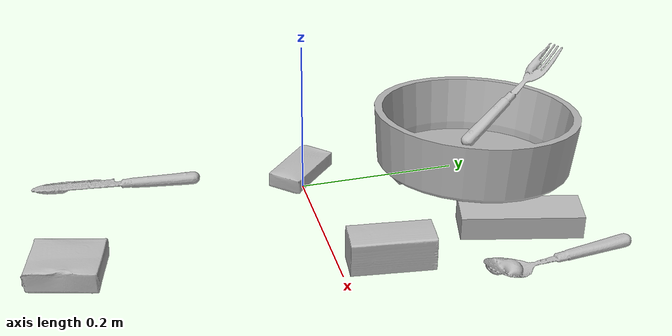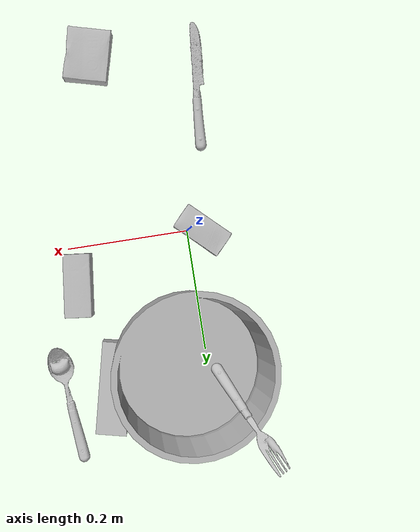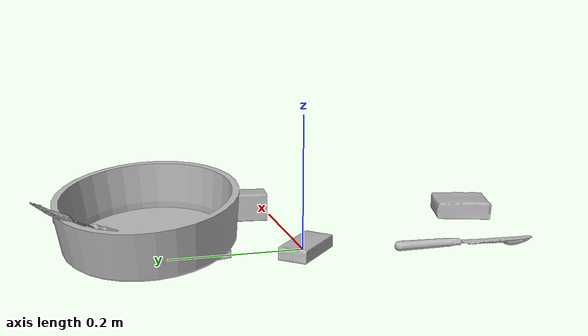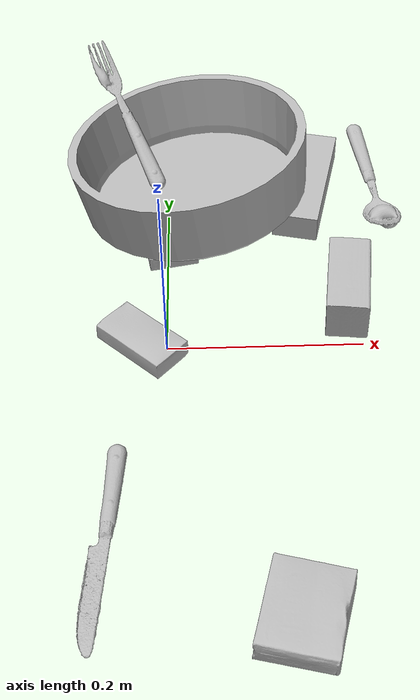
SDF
<sdf version="1.4">
  <world name="default">
    <light name="light1" type="point">
      <pose>0 0 1 0 0 0</pose>
      <diffuse>3 3 3 1</diffuse>
      <specular>3 3 3 1</specular>
    </light>
    <light name="light2" type="point">
      <pose>0 0.5 2 0 0 0</pose>
      <diffuse>1 1 1 1</diffuse>
      <specular>1 1 1 1</specular>
    </light>
    <light name="light3" type="point">
      <pose>0 0.5 2 0 0 0</pose>
      <diffuse>3 3 3 1</diffuse>
      <specular>3 3 3 1</specular>
    </light>
    <scene>
      <ambient>0.7 0.7 0.7</ambient>
    </scene>
    <model name="box11">
      <link name="link_box11">
        <collision name="default">
          <geometry>
            <mesh>
              <uri>model://jenga/collision_meshes/collision.obj</uri>
              <scale>1.0 1.0 1.0</scale>
            </mesh>
          </geometry>
          <surface>
            <friction>
              <ode>
                <mu>0.5</mu>
                <mu2>0.5</mu2>
              </ode>
            </friction>
          <contact>
        <ode>
            <max_vel>0</max_vel>
            <min_depth>0.0001</min_depth>
            <kp>1e8</kp>
        </ode>
    </contact></surface>
        </collision>
        <visual name="default">
          <geometry>
            <mesh>
              <uri>model://jenga/visual_meshes/visual.dae</uri>
              <scale>1.0 1.0 1.0</scale>
            </mesh>
          </geometry>
        </visual>
        <inertial>
          <mass>0.3186844289302826</mass>
          <pose>-2.502855807051674e-07 -0.0001025000965455547 -4.0923401684267446e-05 0.0 -7.34215461761844e-07 0.0</pose>
          <inertia>
            <ixx>8.818771e-05</ixx>
            <iyy>0.0005975576</iyy>
            <izz>0.00063794345</izz>
            <ixy>0</ixy>
            <ixz>0</ixz>
            <iyz>0</iyz>
          </inertia>
        </inertial>
      </link>
      <pose>0.1568501591682434 0.23577891290187836 0.015001403167843819 0.0001348793840755284 -3.83659985477606e-06 -1.7994808877939363</pose>
    </model>
    <model name="box12">
      <link name="link_box12">
        <collision name="default">
          <geometry>
            <mesh>
              <uri>model://pudding_box/collision_meshes/collision.obj</uri>
              <scale>0.5 0.5 0.5</scale>
            </mesh>
          </geometry>
          <surface>
            <friction>
              <ode>
                <mu>0.5</mu>
                <mu2>0.5</mu2>
              </ode>
            </friction>
          <contact>
        <ode>
            <max_vel>0</max_vel>
            <min_depth>0.0001</min_depth>
            <kp>1e8</kp>
        </ode>
    </contact></surface>
        </collision>
        <visual name="default">
          <geometry>
            <mesh>
              <uri>model://pudding_box/visual_meshes/visual.dae</uri>
              <scale>0.5 0.5 0.5</scale>
            </mesh>
          </geometry>
        </visual>
        <inertial>
          <mass>0.030172348022460938</mass>
          <pose>0.00024474109522998333 0.000403394311433658 -0.00025944141088984907 0.005213102256408686 -0.006603800110353006 0.02007982142872578</pose>
          <inertia>
            <ixx>8.527073e-06</ixx>
            <iyy>5.7370744e-06</iyy>
            <izz>1.259245e-05</izz>
            <ixy>0</ixy>
            <ixz>0</ixz>
            <iyz>0</iyz>
          </inertia>
        </inertial>
      </link>
      <pose>0.08407081663608551 0.2553870677947998 0.010442803613841534 -0.02738306823878938 0.0013556017431777517 0.9709836646659947</pose>
    </model>
    <model name="box13">
      <link name="link_box13">
        <collision name="default">
          <geometry>
            <mesh>
              <uri>model://sugar_box/collision_meshes/collision.obj</uri>
              <scale>0.5 0.5 0.5</scale>
            </mesh>
          </geometry>
          <surface>
            <friction>
              <ode>
                <mu>0.5</mu>
                <mu2>0.5</mu2>
              </ode>
            </friction>
          <contact>
        <ode>
            <max_vel>0</max_vel>
            <min_depth>0.0001</min_depth>
            <kp>1e8</kp>
        </ode>
    </contact></surface>
        </collision>
        <visual name="default">
          <geometry>
            <mesh>
              <uri>model://sugar_box/visual_meshes/visual.dae</uri>
              <scale>0.5 0.5 0.5</scale>
            </mesh>
          </geometry>
        </visual>
        <inertial>
          <mass>0.12330043315887451</mass>
          <pose>0.0005171863595023751 1.924554817378521e-05 -0.0001818240125430748 -0.0004046263878582698 0.0010506634058618082 0.0026153787888998363</pose>
          <inertia>
            <ixx>2.5683388e-05</ixx>
            <iyy>8.301401e-05</iyy>
            <izz>9.937768e-05</izz>
            <ixy>0</ixy>
            <ixz>0</ixz>
            <iyz>0</iyz>
          </inertia>
        </inertial>
      </link>
      <pose>-0.02539791353046894 0.0037206418346613646 0.011399298906326294 0.0007755183859077479 -0.023433302650462583 -0.7624739512141807</pose>
    </model>
    <model name="box21">
      <link name="link_box21">
        <collision name="default">
          <geometry>
            <mesh>
              <uri>model://wood_block/collision_meshes/collision.obj</uri>
              <scale>0.5 0.5 0.5</scale>
            </mesh>
          </geometry>
          <surface>
            <friction>
              <ode>
                <mu>0.5</mu>
                <mu2>0.5</mu2>
              </ode>
            </friction>
          <contact>
        <ode>
            <max_vel>0</max_vel>
            <min_depth>0.0001</min_depth>
            <kp>1e8</kp>
        </ode>
    </contact></surface>
        </collision>
        <visual name="default">
          <geometry>
            <mesh>
              <uri>model://wood_block/visual_meshes/visual.dae</uri>
              <scale>0.5 0.5 0.5</scale>
            </mesh>
          </geometry>
        </visual>
        <inertial>
          <mass>0.22575385868549347</mass>
          <pose>-2.9066577553749084e-06 -0.00028540470520965755 0.00013204291462898254 -0.05220771918194674 -0.005192696213783058 -0.006861377697513623</pose>
          <inertia>
            <ixx>7.552322e-05</ixx>
            <iyy>0.00023857782</iyy>
            <izz>0.00023768542</izz>
            <ixy>0</ixy>
            <ixz>0</ixz>
            <iyz>0</iyz>
          </inertia>
        </inertial>
      </link>
      <pose>0.1888556331396103 0.06118139997124672 0.022629264742136 -0.005208610024856685 0.005718786994622207 1.4558315708131937</pose>
    </model>
    <model name="box22">
      <link name="link_box22">
        <collision name="default">
          <geometry>
            <mesh>
              <uri>model://cracker_box/collision_meshes/collision.obj</uri>
              <scale>0.25 0.25 0.25</scale>
            </mesh>
          </geometry>
          <surface>
            <friction>
              <ode>
                <mu>0.5</mu>
                <mu2>0.5</mu2>
              </ode>
            </friction>
          <contact>
        <ode>
            <max_vel>0</max_vel>
            <min_depth>0.0001</min_depth>
            <kp>1e8</kp>
        </ode>
    </contact></surface>
        </collision>
        <visual name="default">
          <geometry>
            <mesh>
              <uri>model://cracker_box/visual_meshes/visual.dae</uri>
              <scale>0.25 0.25 0.25</scale>
            </mesh>
          </geometry>
        </visual>
        <inertial>
          <mass>0.02141544781625271</mass>
          <pose>0.0002366038243053481 6.358561950037256e-05 -0.00042573839891701937 -0.000316207804917531 -0.011106489600095467 0.0025467954686493135</pose>
          <inertia>
            <ixx>3.4044588e-06</ixx>
            <iyy>5.62143e-06</iyy>
            <izz>8.022297e-06</izz>
            <ixy>0</ixy>
            <ixz>0</ixz>
            <iyz>0</iyz>
          </inertia>
        </inertial>
      </link>
      <pose>0.003815574338659644 0.1362195461988449 0.009859868325293064 -0.050360096814180355 -0.013413056806392312 0.15848405727450626</pose>
    </model>
    <model name="box23">
      <link name="link_box23">
        <collision name="default">
          <geometry>
            <mesh>
              <uri>model://gelatin_box/collision_meshes/collision.obj</uri>
              <scale>1.0 1.0 1.0</scale>
            </mesh>
          </geometry>
          <surface>
            <friction>
              <ode>
                <mu>0.5</mu>
                <mu2>0.5</mu2>
              </ode>
            </friction>
          <contact>
        <ode>
            <max_vel>0</max_vel>
            <min_depth>0.0001</min_depth>
            <kp>1e8</kp>
        </ode>
    </contact></surface>
        </collision>
        <visual name="default">
          <geometry>
            <mesh>
              <uri>model://gelatin_box/visual_meshes/visual.dae</uri>
              <scale>1.0 1.0 1.0</scale>
            </mesh>
          </geometry>
        </visual>
        <inertial>
          <mass>0.2518538236618042</mass>
          <pose>0.00043196187471039593 0.00011156871914863586 -0.0003640321083366871 -0.001050372077086074 -0.00475581729336075 0.01644055760821351</pose>
          <inertia>
            <ixx>0.00017778824</ixx>
            <iyy>0.00012699323</iyy>
            <izz>0.00027063338</izz>
            <ixy>0</ixy>
            <ixz>0</ixz>
            <iyz>0</iyz>
          </inertia>
        </inertial>
      </link>
      <pose>0.11709447205066681 -0.3101654052734375 0.01516831573098898 0.005597482221015228 -0.007304553948584649 -0.26835722156790687</pose>
    </model>
    <model name="plate1">
      <link name="link_plate1">
        <collision name="default">
          <geometry>
            <mesh>
              <uri>model://pan_tefal/collision_meshes/collision.obj</uri>
              <scale>1.0 1.0 1.0</scale>
            </mesh>
          </geometry>
          <surface>
            <friction>
              <ode>
                <mu>0.5</mu>
                <mu2>0.5</mu2>
              </ode>
            </friction>
          <contact>
        <ode>
            <max_vel>0</max_vel>
            <min_depth>0.0001</min_depth>
            <kp>1e8</kp>
        </ode>
    </contact></surface>
        </collision>
        <visual name="default">
          <geometry>
            <mesh>
              <uri>model://pan_tefal/visual_meshes/visual.dae</uri>
              <scale>1.0 1.0 1.0</scale>
            </mesh>
          </geometry>
        </visual>
        <inertial>
          <mass>1.2783581018447876</mass>
          <pose>-0.0001800234749680385 3.279297015978955e-05 -0.008514934219419956 0.0008190282028794127 -0.0003301398069692291 -0.33185125702417473</pose>
          <inertia>
            <ixx>0.0088244425</ixx>
            <iyy>0.008881334</iyy>
            <izz>0.016244099</izz>
            <ixy>0</ixy>
            <ixz>0</ixz>
            <iyz>0</iyz>
          </inertia>
        </inertial>
      </link>
      <pose>0.027026640251278877 0.22275033593177795 0.056022677570581436 -0.14675479318833715 0.05388322333077913 1.4128265118960646</pose>
    </model>
    <model name="silverware1">
      <link name="link_silverware1">
        <collision name="default">
          <geometry>
            <mesh>
              <uri>model://knife/collision_meshes/collision.obj</uri>
              <scale>1.0 1.0 1.0</scale>
            </mesh>
          </geometry>
          <surface>
            <friction>
              <ode>
                <mu>0.5</mu>
                <mu2>0.5</mu2>
              </ode>
            </friction>
          <contact>
        <ode>
            <max_vel>0</max_vel>
            <min_depth>0.0001</min_depth>
            <kp>1e8</kp>
        </ode>
    </contact></surface>
        </collision>
        <visual name="default">
          <geometry>
            <mesh>
              <uri>model://knife/visual_meshes/visual.dae</uri>
              <scale>1.0 1.0 1.0</scale>
            </mesh>
          </geometry>
        </visual>
        <inertial>
          <mass>0.028752580285072327</mass>
          <pose>-0.023785240948200226 0.0015275123296305537 5.0620223191799596e-05 0.07306965696526056 0.017248417457013686 -0.00740982691157592</pose>
          <inertia>
            <ixx>8.161146e-07</ixx>
            <iyy>0.000110462766</iyy>
            <izz>0.00011072555</izz>
            <ixy>0</ixy>
            <ixz>0</ixz>
            <iyz>0</iyz>
          </inertia>
        </inertial>
      </link>
      <pose>-0.05561195686459541 -0.23399986326694489 0.007946563884615898 -0.023908069830571387 -0.01454314080077501 -1.6656769629147476</pose>
    </model>
    <model name="silverware2">
      <link name="link_silverware2">
        <collision name="default">
          <geometry>
            <mesh>
              <uri>model://spoon/collision_meshes/collision.obj</uri>
              <scale>1.0 1.0 1.0</scale>
            </mesh>
          </geometry>
          <surface>
            <friction>
              <ode>
                <mu>0.5</mu>
                <mu2>0.5</mu2>
              </ode>
            </friction>
          <contact>
        <ode>
            <max_vel>0</max_vel>
            <min_depth>0.0001</min_depth>
            <kp>1e8</kp>
        </ode>
    </contact></surface>
        </collision>
        <visual name="default">
          <geometry>
            <mesh>
              <uri>model://spoon/visual_meshes/visual.dae</uri>
              <scale>1.0 1.0 1.0</scale>
            </mesh>
          </geometry>
        </visual>
        <inertial>
          <mass>0.03275385871529579</mass>
          <pose>-0.005526320543140173 -0.0016034176805987954 -0.0007271653157658875 0.03521620701241808 -0.03906583474323888 0.006150609342160928</pose>
          <inertia>
            <ixx>1.8218228e-06</ixx>
            <iyy>0.00012462735</iyy>
            <izz>0.0001255258</izz>
            <ixy>0</ixy>
            <ixz>0</ixz>
            <iyz>0</iyz>
          </inertia>
        </inertial>
      </link>
      <pose>0.23654426634311676 0.25312739610671997 0.008385268971323967 0.006732070317068523 0.026892941713535165 -1.46665760377043</pose>
    </model>
    <model name="silverware3">
      <link name="link_silverware3">
        <collision name="default">
          <geometry>
            <mesh>
              <uri>model://fork/collision_meshes/collision.obj</uri>
              <scale>1.0 1.0 1.0</scale>
            </mesh>
          </geometry>
          <surface>
            <friction>
              <ode>
                <mu>0.5</mu>
                <mu2>0.5</mu2>
              </ode>
            </friction>
          <contact>
        <ode>
            <max_vel>0</max_vel>
            <min_depth>0.0001</min_depth>
            <kp>1e8</kp>
        </ode>
    </contact></surface>
        </collision>
        <visual name="default">
          <geometry>
            <mesh>
              <uri>model://fork/visual_meshes/visual.dae</uri>
              <scale>1.0 1.0 1.0</scale>
            </mesh>
          </geometry>
        </visual>
        <inertial>
          <mass>0.015051598660647869</mass>
          <pose>-0.029570037499070168 0.00046588244731538 0.0003218861238565296 -0.013550825752082697 -0.010977832944741694 0.014453903400543814</pose>
          <inertia>
            <ixx>5.2764364e-07</ixx>
            <iyy>3.9295395e-05</iyy>
            <izz>3.953141e-05</izz>
            <ixy>0</ixy>
            <ixz>0</ixz>
            <iyz>0</iyz>
          </inertia>
        </inertial>
      </link>
      <pose>-0.04648624733090401 0.302217960357666 0.06812898814678192 0.1381566251958455 -0.4563089613926692 2.014201197805216</pose>
    </model>
  <physics type="ode">
      <max_contacts>50</max_contacts>
      <ode>
        <solver>
          <type>quick</type>
          <iters>75</iters>
        </solver>
        <constraints>
          <contact_max_correcting_vel>0</contact_max_correcting_vel>
          <contact_surface_layer>0</contact_surface_layer>
        </constraints>
      </ode>
    </physics></world>
</sdf>
